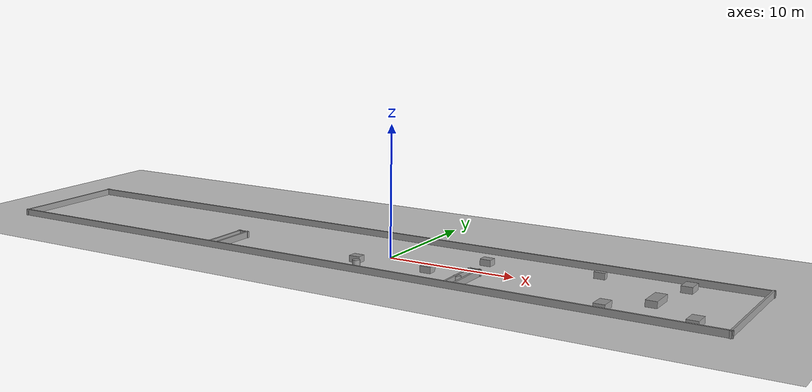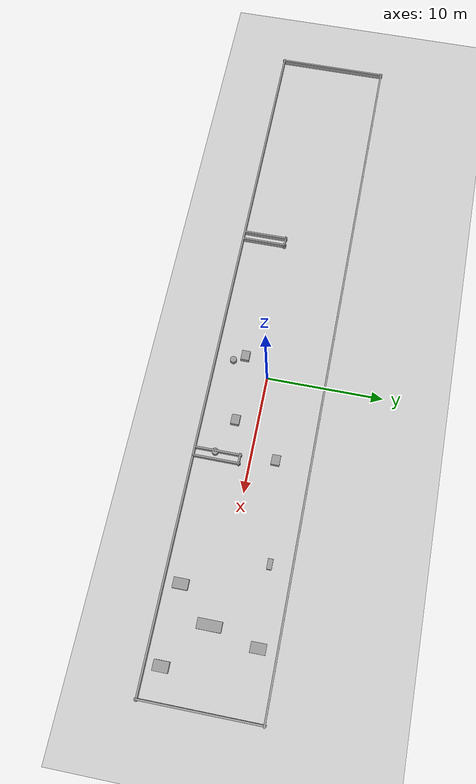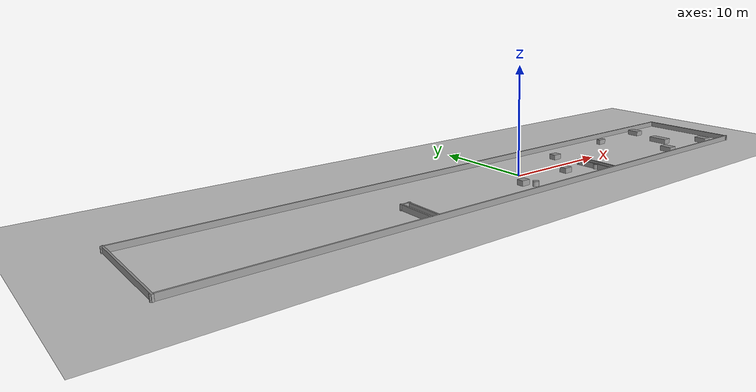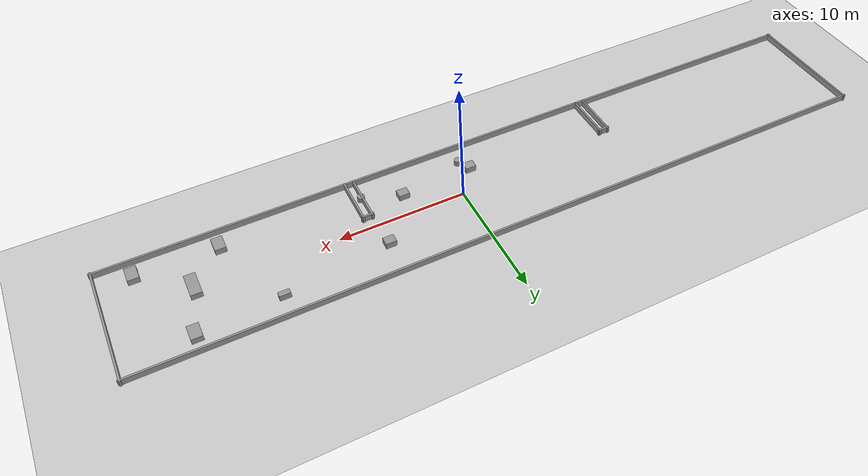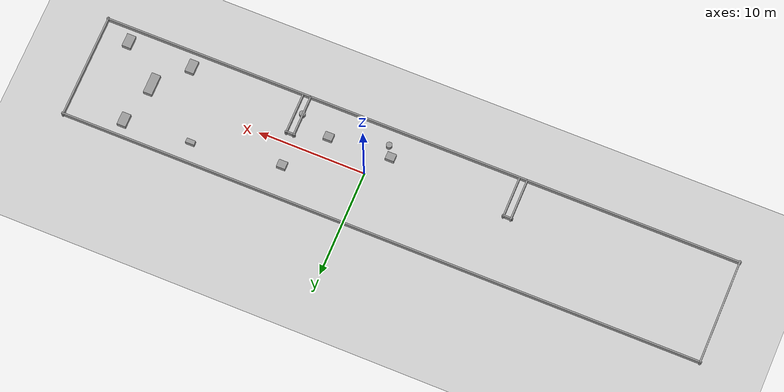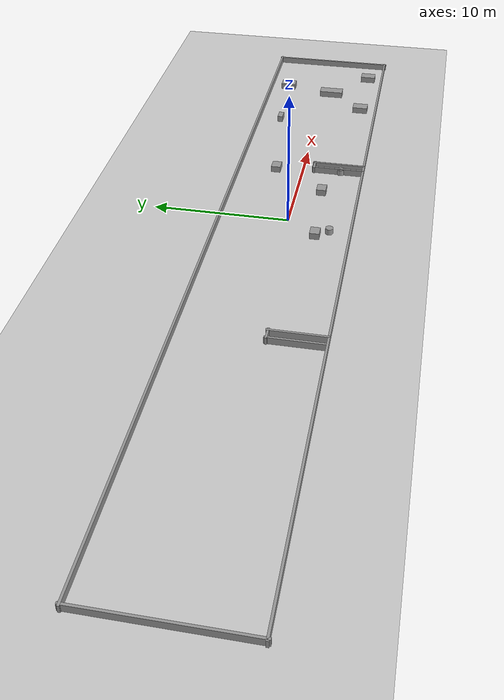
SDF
<sdf version="1.6">
 <world name="default">
  <model name="ground_plane">
   <static>1</static>
   <link name="link">
    <collision name="collision">
     <geometry><plane><normal>0 0 1</normal><size>200 200</size></plane></geometry>
     <surface><friction><ode><mu>100</mu><mu2>50</mu2></ode></friction></surface>
    </collision>
    <visual name="visual">
     <geometry><plane><normal>0 0 1</normal><size>200 200</size></plane></geometry>
     <material>
      <ambient>0.8 0.8 0.8 1</ambient>
      <diffuse>0.8 0.8 0.8 1</diffuse>
      <specular>0.1 0.1 0.1 1</specular>
     </material>
    </visual>
   </link>
  </model>
  <model name="exp_empty_rooms">
   <pose>-3.32278 0.144212 0 0 -0 0</pose>
   <link name="Wall_0">
    <collision name="Wall_0_Collision">
     <geometry><box><size>10 0.15 0.5</size></box></geometry>
     <pose>0 0 0.25 0 -0 0</pose>
    </collision>
    <visual name="Wall_0_Visual">
     <pose>0 0 0.25 0 -0 0</pose>
     <geometry><box><size>10 0.15 0.5</size></box></geometry>
     <material>
      <script><uri>file://media/materials/scripts/gazebo.material</uri><name>Gazebo/Grey</name></script>
      <ambient>1 1 1 1</ambient>
     </material>
     <meta><layer>0</layer></meta>
    </visual>
    <pose>-29.85 0 0 0 -0 -1.5708</pose>
   </link>
   <link name="Wall_1">
    <collision name="Wall_1_Collision">
     <geometry><box><size>60 0.15 0.5</size></box></geometry>
     <pose>0 0 0.25 0 -0 0</pose>
    </collision>
    <visual name="Wall_1_Visual">
     <pose>0 0 0.25 0 -0 0</pose>
     <geometry><box><size>60 0.15 0.5</size></box></geometry>
     <material>
      <script><uri>file://media/materials/scripts/gazebo.material</uri><name>Gazebo/Grey</name></script>
      <ambient>1 1 1 1</ambient>
     </material>
     <meta><layer>0</layer></meta>
    </visual>
    <pose>0 -4.85 0 0 -0 0</pose>
   </link>
   <link name="Wall_16">
    <collision name="Wall_16_Collision">
     <geometry><box><size>1 0.15 0.5</size></box></geometry>
     <pose>0 0 0.25 0 -0 0</pose>
    </collision>
    <visual name="Wall_16_Visual">
     <pose>0 0 0.25 0 -0 0</pose>
     <geometry><box><size>1 0.15 0.5</size></box></geometry>
     <material>
      <script><uri>file://media/materials/scripts/gazebo.material</uri><name>Gazebo/Grey</name></script>
      <ambient>1 1 1 1</ambient>
     </material>
     <meta><layer>0</layer></meta>
    </visual>
    <pose>-9.76 -1.05 0 0 -0 0</pose>
   </link>
   <link name="Wall_17">
    <collision name="Wall_17_Collision">
     <geometry><box><size>4 0.15 0.5</size></box></geometry>
     <pose>0 0 0.25 0 -0 0</pose>
    </collision>
    <visual name="Wall_17_Visual">
     <pose>0 0 0.25 0 -0 0</pose>
     <geometry><box><size>4 0.15 0.5</size></box></geometry>
     <material>
      <script><uri>file://media/materials/scripts/gazebo.material</uri><name>Gazebo/Grey</name></script>
      <ambient>1 1 1 1</ambient>
     </material>
     <meta><layer>0</layer></meta>
    </visual>
    <pose>-9.41 -2.9 0 0 -0 -1.5708</pose>
   </link>
   <link name="Wall_19">
    <collision name="Wall_19_Collision">
     <geometry><box><size>4 0.15 0.5</size></box></geometry>
     <pose>0 0 0.25 0 -0 0</pose>
    </collision>
    <visual name="Wall_19_Visual">
     <pose>0 0 0.25 0 -0 0</pose>
     <geometry><box><size>4 0.15 0.5</size></box></geometry>
     <material>
      <script><uri>file://media/materials/scripts/gazebo.material</uri><name>Gazebo/Grey</name></script>
      <ambient>1 1 1 1</ambient>
     </material>
     <meta><layer>0</layer></meta>
    </visual>
    <pose>-10.11 -2.9 0 0 -0 -1.5708</pose>
   </link>
   <link name="Wall_2">
    <collision name="Wall_2_Collision">
     <geometry><box><size>10 0.15 0.5</size></box></geometry>
     <pose>0 0 0.25 0 -0 0</pose>
    </collision>
    <visual name="Wall_2_Visual">
     <pose>0 0 0.25 0 -0 0</pose>
     <geometry><box><size>10 0.15 0.5</size></box></geometry>
     <material>
      <script><uri>file://media/materials/scripts/gazebo.material</uri><name>Gazebo/Grey</name></script>
      <ambient>1 1 1 1</ambient>
     </material>
     <meta><layer>0</layer></meta>
    </visual>
    <pose>29.85 0 0 0 -0 1.5708</pose>
   </link>
   <link name="Wall_3">
    <collision name="Wall_3_Collision">
     <geometry><box><size>60 0.15 0.5</size></box></geometry>
     <pose>0 0 0.25 0 -0 0</pose>
    </collision>
    <visual name="Wall_3_Visual">
     <pose>0 0 0.25 0 -0 0</pose>
     <geometry><box><size>60 0.15 0.5</size></box></geometry>
     <material>
      <script><uri>file://media/materials/scripts/gazebo.material</uri><name>Gazebo/Grey</name></script>
      <ambient>1 1 1 1</ambient>
     </material>
     <meta><layer>0</layer></meta>
    </visual>
    <pose>0 4.85 0 0 -0 3.14159</pose>
   </link>
   <link name="Wall_38">
    <collision name="Wall_38_Collision">
     <geometry><box><size>4 0.15 0.5</size></box></geometry>
     <pose>0 0 0.25 0 -0 0</pose>
    </collision>
    <visual name="Wall_38_Visual">
     <pose>0 0 0.25 0 -0 0</pose>
     <geometry><box><size>4 0.15 0.5</size></box></geometry>
     <material>
      <script><uri>file://media/materials/scripts/gazebo.material</uri><name>Gazebo/Grey</name></script>
      <ambient>1 1 1 1</ambient>
     </material>
     <meta><layer>0</layer></meta>
    </visual>
    <pose>10.37 -2.88 0 0 -0 -1.5708</pose>
   </link>
   <link name="Wall_43">
    <collision name="Wall_43_Collision">
     <geometry><box><size>1 0.15 0.5</size></box></geometry>
     <pose>0 0 0.25 0 -0 0</pose>
    </collision>
    <visual name="Wall_43_Visual">
     <pose>0 0 0.25 0 -0 0</pose>
     <geometry><box><size>1 0.15 0.5</size></box></geometry>
     <material>
      <script><uri>file://media/materials/scripts/gazebo.material</uri><name>Gazebo/Grey</name></script>
      <ambient>1 1 1 1</ambient>
     </material>
     <meta><layer>0</layer></meta>
    </visual>
    <pose>10.72 -1.03 0 0 -0 0</pose>
   </link>
   <link name="Wall_44">
    <collision name="Wall_44_Collision">
     <geometry><box><size>4 0.15 0.5</size></box></geometry>
     <pose>0 0 0.25 0 -0 0</pose>
    </collision>
    <visual name="Wall_44_Visual">
     <pose>0 0 0.25 0 -0 0</pose>
     <geometry><box><size>4 0.15 0.5</size></box></geometry>
     <material>
      <script><uri>file://media/materials/scripts/gazebo.material</uri><name>Gazebo/Grey</name></script>
      <ambient>1 1 1 1</ambient>
     </material>
     <meta><layer>0</layer></meta>
    </visual>
    <pose>11.07 -2.88 0 0 -0 -1.5708</pose>
   </link>
   <static>1</static>
  </model>
  <model name="unit_box_clone_clone">
   <pose>-1.6018 -2.20654 0.243066 0 -0 0</pose>
   <link name="link">
    <inertial>
     <mass>1</mass>
     <inertia>
      <ixx>0.166667</ixx>
      <ixy>0</ixy>
      <ixz>0</ixz>
      <iyy>0.166667</iyy>
      <iyz>0</iyz>
      <izz>0.166667</izz>
     </inertia>
    </inertial>
    <collision name="collision">
     <geometry><box><size>0.832545 0.712184 0.486131</size></box></geometry>
    </collision>
    <visual name="visual">
     <geometry><box><size>0.832545 0.712184 0.486131</size></box></geometry>
     <material>
      <script><name>Gazebo/Grey</name><uri>file://media/materials/scripts/gazebo.material</uri></script>
     </material>
    </visual>
   </link>
  </model>
  <model name="unit_box_clone_clone_1">
   <pose>4.15108 -1.88395 0.243066 0 -0 0</pose>
   <link name="link">
    <inertial>
     <mass>1</mass>
     <inertia>
      <ixx>0.166667</ixx>
      <ixy>0</ixy>
      <ixz>0</ixz>
      <iyy>0.166667</iyy>
      <iyz>0</iyz>
      <izz>0.166667</izz>
     </inertia>
    </inertial>
    <collision name="collision">
     <geometry><box><size>0.832545 0.712184 0.486131</size></box></geometry>
    </collision>
    <visual name="visual">
     <geometry><box><size>0.832545 0.712184 0.486131</size></box></geometry>
     <material>
      <script><name>Gazebo/Grey</name><uri>file://media/materials/scripts/gazebo.material</uri></script>
     </material>
    </visual>
   </link>
  </model>
  <model name="unit_box_clone_clone_2">
   <pose>6.90728 2.07204 0.243066 0 -0 0</pose>
   <link name="link">
    <inertial>
     <mass>1</mass>
     <inertia>
      <ixx>0.166667</ixx>
      <ixy>0</ixy>
      <ixz>0</ixz>
      <iyy>0.166667</iyy>
      <iyz>0</iyz>
      <izz>0.166667</izz>
     </inertia>
    </inertial>
    <collision name="collision">
     <geometry><box><size>0.832545 0.712184 0.486131</size></box></geometry>
    </collision>
    <visual name="visual">
     <geometry><box><size>0.832545 0.712184 0.486131</size></box></geometry>
     <material>
      <script><name>Gazebo/Grey</name><uri>file://media/materials/scripts/gazebo.material</uri></script>
     </material>
    </visual>
   </link>
  </model>
  <model name="unit_box_clone_clone_2_clone">
   <pose>15.14046 3.17268 0.243066 0 -0 0</pose>
   <link name="link">
    <inertial>
     <mass>1</mass>
     <inertia>
      <ixx>0.166667</ixx>
      <ixy>0</ixy>
      <ixz>0</ixz>
      <iyy>0.166667</iyy>
      <iyz>0</iyz>
      <izz>0.166667</izz>
     </inertia>
    </inertial>
    <collision name="collision"><geometry><box><size>0.832545 0.41249 0.486131</size></box></geometry></collision>
    <visual name="visual">
     <geometry><box><size>0.832545 0.41249 0.486131</size></box></geometry>
     <material>
      <script><name>Gazebo/Grey</name><uri>file://media/materials/scripts/gazebo.material</uri></script>
     </material>
    </visual>
   </link>
  </model>
  <model name="unit_box_clone_clone_2_clone_clone">
   <pose>17.8679 -3.35354 0.243066 0 -0 -3e-06</pose>
   <link name="link">
    <inertial>
     <mass>1</mass>
     <inertia>
      <ixx>0.166667</ixx>
      <ixy>0</ixy>
      <ixz>0</ixz>
      <iyy>0.166667</iyy>
      <iyz>0</iyz>
      <izz>0.166667</izz>
     </inertia>
    </inertial>
    <collision name="collision"><geometry><box><size>0.832545 1.22961 0.486131</size></box></geometry></collision>
    <visual name="visual">
     <geometry><box><size>0.832545 1.22961 0.486131</size></box></geometry>
     <material>
      <script><name>Gazebo/Grey</name><uri>file://media/materials/scripts/gazebo.material</uri></script>
     </material>
    </visual>
   </link>
  </model>
  <model name="unit_box_clone_clone_2_clone_clone_clone">
   <pose>21.3716 3.48832 0.243066 0 0 -3e-06</pose>
   <link name="link">
    <inertial>
     <mass>1</mass>
     <inertia>
      <ixx>0.166667</ixx>
      <ixy>0</ixy>
      <ixz>0</ixz>
      <iyy>0.166667</iyy>
      <iyz>0</iyz>
      <izz>0.166667</izz>
     </inertia>
    </inertial>
    <collision name="collision"><geometry><box><size>0.832545 1.22961 0.486131</size></box></geometry></collision>
    <visual name="visual">
     <geometry><box><size>0.832545 1.22961 0.486131</size></box></geometry>
     <material>
      <script><name>Gazebo/Grey</name><uri>file://media/materials/scripts/gazebo.material</uri></script>
     </material>
    </visual>
   </link>
  </model>
  <model name="unit_box_clone_clone_2_clone_clone_clone_0">
   <pose>23.9706 -3.44752 0.243066 0 0 -3e-06</pose>
   <link name="link">
    <inertial>
     <mass>1</mass>
     <inertia>
      <ixx>0.166667</ixx>
      <ixy>0</ixy>
      <ixz>0</ixz>
      <iyy>0.166667</iyy>
      <iyz>0</iyz>
      <izz>0.166667</izz>
     </inertia>
    </inertial>
    <collision name="collision"><geometry><box><size>0.832545 1.22961 0.486131</size></box></geometry></collision>
    <visual name="visual">
     <geometry><box><size>0.832545 1.22961 0.486131</size></box></geometry>
     <material>
      <script><name>Gazebo/Grey</name><uri>file://media/materials/scripts/gazebo.material</uri></script>
     </material>
    </visual>
   </link>
  </model>
  <model name="unit_box_clone_clone_2_clone_clone_clone_1">
   <pose>20.4514 -0.49972 0.243066 0 0 -3e-06</pose>
   <link name="link">
    <inertial>
     <mass>1</mass>
     <inertia>
      <ixx>0.166667</ixx>
      <ixy>0</ixy>
      <ixz>0</ixz>
      <iyy>0.166667</iyy>
      <iyz>0</iyz>
      <izz>0.166667</izz>
     </inertia>
    </inertial>
    <collision name="collision"><geometry><box><size>0.832545 1.95429 0.486131</size></box></geometry></collision>
    <visual name="visual">
     <geometry><box><size>0.832545 1.95429 0.486131</size></box></geometry>
     <material>
      <script><name>Gazebo/Grey</name><uri>file://media/materials/scripts/gazebo.material</uri></script>
     </material>
    </visual>
   </link>
  </model>
  <model name="unit_cylinder_clone_0">
   <pose>7.10898 -2.97822 0.22289 2e-06 2e-06 0</pose>
   <link name="link">
    <inertial>
     <mass>1</mass>
     <inertia><ixx>0.145833</ixx><ixy>0</ixy><ixz>0</ixz><iyy>0.145833</iyy><iyz>0</iyz><izz>0.125</izz></inertia>
    </inertial>
    <collision name="collision">
     <geometry><cylinder><radius>0.278354</radius><length>0.445785</length></cylinder></geometry>
    </collision>
    <visual name="visual">
     <geometry><cylinder><radius>0.278354</radius><length>0.445785</length></cylinder></geometry>
     <material>
      <script><name>Gazebo/Grey</name><uri>file://media/materials/scripts/gazebo.material</uri></script>
     </material>
    </visual>
   </link>
  </model>
  <model name="unit_cylinder_clone_0_clone">
   <pose>-1.05274 -3.16352 0.222885 -2e-06 -2e-06 0</pose>
   <link name="link">
    <inertial>
     <mass>1</mass>
     <inertia><ixx>0.145833</ixx><ixy>0</ixy><ixz>0</ixz><iyy>0.145833</iyy><iyz>0</iyz><izz>0.125</izz></inertia>
    </inertial>
    <collision name="collision">
     <geometry><cylinder><radius>0.278354</radius><length>0.445785</length></cylinder></geometry>
    </collision>
    <visual name="visual">
     <geometry><cylinder><radius>0.278354</radius><length>0.445785</length></cylinder></geometry>
     <material>
      <script><name>Gazebo/Grey</name><uri>file://media/materials/scripts/gazebo.material</uri></script>
     </material>
    </visual>
   </link>
  </model>
 </world>
</sdf>
